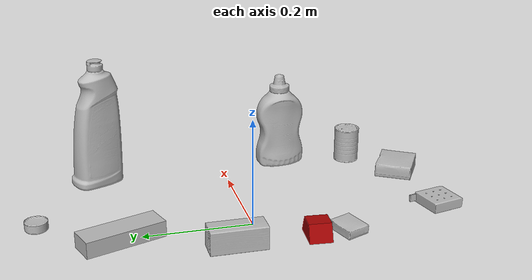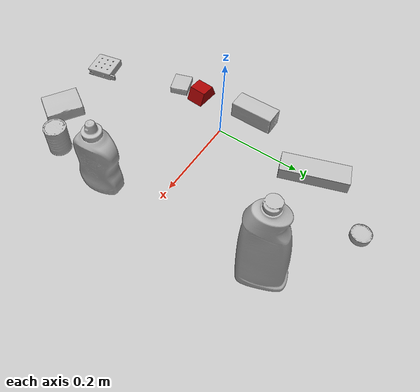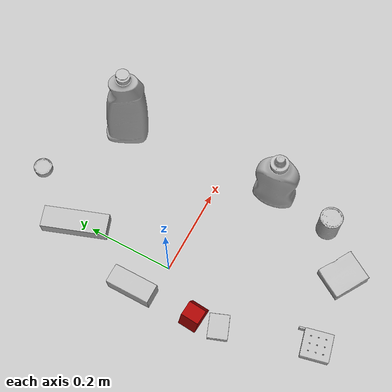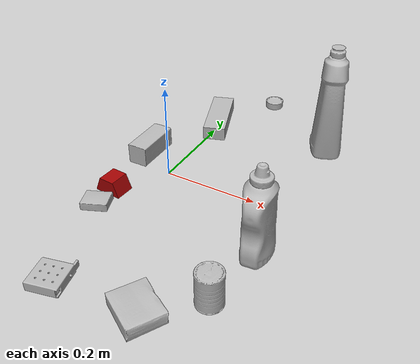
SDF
<sdf version="1.4">
  <world name="default">
    <light name="light1" type="point">
      <pose>0 0 1 0 0 0</pose>
      <diffuse>3 3 3 1</diffuse>
      <specular>3 3 3 1</specular>
    </light>
    <light name="light2" type="point">
      <pose>0 0.5 2 0 0 0</pose>
      <diffuse>1 1 1 1</diffuse>
      <specular>1 1 1 1</specular>
    </light>
    <light name="light3" type="point">
      <pose>0 0.5 2 0 0 0</pose>
      <diffuse>3 3 3 1</diffuse>
      <specular>3 3 3 1</specular>
    </light>
    <scene>
      <ambient>0.7 0.7 0.7</ambient>
    </scene>
    <model name="bottle1">
      <link name="link_bottle1">
        <collision name="default">
          <geometry>
            <mesh>
              <uri>model://mustard_bottle/collision_meshes/collision.obj</uri>
              <scale>1.0 1.0 1.0</scale>
            </mesh>
          </geometry>
          <surface>
            <friction>
              <ode>
                <mu>0.5</mu>
                <mu2>0.5</mu2>
              </ode>
            </friction>
          <contact>
        <ode>
            <max_vel>0</max_vel>
            <min_depth>0.0001</min_depth>
            <kp>1e8</kp>
        </ode>
    </contact></surface>
        </collision>
        <visual name="default">
          <geometry>
            <mesh>
              <uri>model://mustard_bottle/visual_meshes/visual.dae</uri>
              <scale>1.0 1.0 1.0</scale>
            </mesh>
          </geometry>
        </visual>
        <inertial>
          <mass>0.6762011647224426</mass>
          <pose>0.0005032454500906169 -0.00015647402324248105 -0.0174757931381464 0.0004182330054410876 0.0009465793907204819 0.02485376893997312</pose>
          <inertia>
            <ixx>0.001877718</ixx>
            <iyy>0.0016475386</iyy>
            <izz>0.0004948735</izz>
            <ixy>0</ixy>
            <ixz>0</ixz>
            <iyz>0</iyz>
          </inertia>
        </inertial>
      </link>
      <pose>0.26876530051231384 -0.12547828257083893 0.09583088755607605 -0.012050419823490581 -0.004889890423328554 0.07020480972367052</pose>
    </model>
    <model name="bottle2">
      <link name="link_bottle2">
        <collision name="default">
          <geometry>
            <mesh>
              <uri>model://bleach_cleanser/collision_meshes/collision.obj</uri>
              <scale>1.0 1.0 1.0</scale>
            </mesh>
          </geometry>
          <surface>
            <friction>
              <ode>
                <mu>0.5</mu>
                <mu2>0.5</mu2>
              </ode>
            </friction>
          <contact>
        <ode>
            <max_vel>0</max_vel>
            <min_depth>0.0001</min_depth>
            <kp>1e8</kp>
        </ode>
    </contact></surface>
        </collision>
        <visual name="default">
          <geometry>
            <mesh>
              <uri>model://bleach_cleanser/visual_meshes/visual.dae</uri>
              <scale>1.0 1.0 1.0</scale>
            </mesh>
          </geometry>
        </visual>
        <inertial>
          <mass>1.3947629928588867</mass>
          <pose>0.00012193183647468686 0.0037838828284293413 -0.02442161738872528 -0.07381670616230765 0.000420115363335565 -0.006875068774372656</pose>
          <inertia>
            <ixx>0.0067885136</ixx>
            <iyy>0.006325901</iyy>
            <izz>0.0011606595</izz>
            <ixy>0</ixy>
            <ixz>0</ixz>
            <iyz>0</iyz>
          </inertia>
        </inertial>
      </link>
      <pose>0.255952924489975 0.2542741596698761 0.12578412890434265 -0.00019903811853947746 1.7292002989120216e-05 -2.7332418351081555</pose>
    </model>
    <model name="toy1">
      <link name="link_toy1">
        <collision name="default">
          <geometry>
            <mesh>
              <uri>model://nine_hole_peg_test/collision_meshes/collision.obj</uri>
              <scale>0.5 0.5 0.5</scale>
            </mesh>
          </geometry>
          <surface>
            <friction>
              <ode>
                <mu>0.5</mu>
                <mu2>0.5</mu2>
              </ode>
            </friction>
          <contact>
        <ode>
            <max_vel>0</max_vel>
            <min_depth>0.0001</min_depth>
            <kp>1e8</kp>
        </ode>
    </contact></surface>
        </collision>
        <visual name="default">
          <geometry>
            <mesh>
              <uri>model://nine_hole_peg_test/visual_meshes/visual.dae</uri>
              <scale>0.5 0.5 0.5</scale>
            </mesh>
          </geometry>
        </visual>
        <inertial>
          <mass>0.11556825786828995</mass>
          <pose>-0.0023086932487785816 -0.004823807626962662 1.3230343029135838e-05 -0.0014666797633517714 0.0007194158879745651 -0.6342419016734399</pose>
          <inertia>
            <ixx>4.5177487e-05</ixx>
            <iyy>4.2181746e-05</iyy>
            <izz>7.9164296e-05</izz>
            <ixy>0</ixy>
            <ixz>0</ixz>
            <iyz>0</iyz>
          </inertia>
        </inertial>
      </link>
      <pose>-0.002962038852274418 -0.35564255714416504 0.010385497473180294 -4.010807337397566e-09 -2.4294244238246645e-08 0.22790756746334934</pose>
    </model>
    <model name="toy2">
      <link name="link_toy2">
        <collision name="default">
          <geometry>
            <mesh>
              <uri>model://prism/collision_meshes/collision.obj</uri>
              <scale>0.5 0.5 0.5</scale>
            </mesh>
          </geometry>
          <surface>
            <friction>
              <ode>
                <mu>0.5</mu>
                <mu2>0.5</mu2>
              </ode>
            </friction>
          <contact>
        <ode>
            <max_vel>0</max_vel>
            <min_depth>0.0001</min_depth>
            <kp>1e8</kp>
        </ode>
    </contact></surface>
        </collision>
        <visual name="default">
          <geometry>
            <mesh>
              <uri>model://prism/visual_meshes/visual.dae</uri>
              <scale>0.5 0.5 0.5</scale>
            </mesh>
          </geometry>
        </visual>
        <inertial>
          <mass>0.033433690667152405</mass>
          <pose>-4.9267986469203606e-05 -2.480786349678965e-07 -0.001693455153144896 0.0 0.00655918030046738 0.0</pose>
          <inertia>
            <ixx>7.543374e-06</ixx>
            <iyy>9.116264e-06</iyy>
            <izz>1.1166334e-05</izz>
            <ixy>0</ixy>
            <ixz>0</ixz>
            <iyz>0</iyz>
          </inertia>
        </inertial>
      </link>
      <pose>-0.06917878985404968 -0.100094735622406 0.016084996983408928 1.2218353335553663e-08 -3.7753582026849926e-08 -0.07483323707993324</pose>
    </model>
    <model name="can1">
      <link name="link_can1">
        <collision name="default">
          <geometry>
            <mesh>
              <uri>model://master_chef_can/collision_meshes/collision.obj</uri>
              <scale>0.5 0.5 0.5</scale>
            </mesh>
          </geometry>
          <surface>
            <friction>
              <ode>
                <mu>0.5</mu>
                <mu2>0.5</mu2>
              </ode>
            </friction>
          <contact>
        <ode>
            <max_vel>0</max_vel>
            <min_depth>0.0001</min_depth>
            <kp>1e8</kp>
        </ode>
    </contact></surface>
        </collision>
        <visual name="default">
          <geometry>
            <mesh>
              <uri>model://master_chef_can/visual_meshes/visual.dae</uri>
              <scale>0.5 0.5 0.5</scale>
            </mesh>
          </geometry>
        </visual>
        <inertial>
          <mass>0.10766725987195969</mass>
          <pose>-4.661964703700505e-05 1.3926853625889635e-07 -5.079878610558808e-05 -0.0017995160150511523 0.000647916474058074 -0.6102670332280266</pose>
          <inertia>
            <ixx>6.319339e-05</ixx>
            <iyy>6.2728286e-05</iyy>
            <izz>3.491918e-05</izz>
            <ixy>0</ixy>
            <ixz>0</ixz>
            <iyz>0</iyz>
          </inertia>
        </inertial>
      </link>
      <pose>0.2529718279838562 -0.2698703408241272 0.03530199080705643 -1.2670726536261322e-06 -7.75792079839481e-07 2.1632342863504217</pose>
    </model>
    <model name="can2">
      <link name="link_can2">
        <collision name="default">
          <geometry>
            <mesh>
              <uri>model://tuna_fish_can/collision_meshes/collision.obj</uri>
              <scale>0.5 0.5 0.5</scale>
            </mesh>
          </geometry>
          <surface>
            <friction>
              <ode>
                <mu>0.5</mu>
                <mu2>0.5</mu2>
              </ode>
            </friction>
          <contact>
        <ode>
            <max_vel>0</max_vel>
            <min_depth>0.0001</min_depth>
            <kp>1e8</kp>
        </ode>
    </contact></surface>
        </collision>
        <visual name="default">
          <geometry>
            <mesh>
              <uri>model://tuna_fish_can/visual_meshes/visual.dae</uri>
              <scale>0.5 0.5 0.5</scale>
            </mesh>
          </geometry>
        </visual>
        <inertial>
          <mass>0.02740846574306488</mass>
          <pose>-2.0361561837489717e-05 -7.256384378706571e-06 -0.0005269024986773729 -0.0017944791545750336 0.000171617609773777 0.24054039995463303</pose>
          <inertia>
            <ixx>3.7056664e-06</ixx>
            <iyy>3.6902204e-06</iyy>
            <izz>6.3409243e-06</izz>
            <ixy>0</ixy>
            <ixz>0</ixz>
            <iyz>0</iyz>
          </inertia>
        </inertial>
      </link>
      <pose>0.07490111142396927 0.3783920407295227 0.008520002476871014 2.3958061120925304e-08 -1.3827230472682196e-08 -1.5054433877787674</pose>
    </model>
    <model name="box1">
      <link name="link_box1">
        <collision name="default">
          <geometry>
            <mesh>
              <uri>model://gelatin_box/collision_meshes/collision.obj</uri>
              <scale>1.0 1.0 1.0</scale>
            </mesh>
          </geometry>
          <surface>
            <friction>
              <ode>
                <mu>0.5</mu>
                <mu2>0.5</mu2>
              </ode>
            </friction>
          <contact>
        <ode>
            <max_vel>0</max_vel>
            <min_depth>0.0001</min_depth>
            <kp>1e8</kp>
        </ode>
    </contact></surface>
        </collision>
        <visual name="default">
          <geometry>
            <mesh>
              <uri>model://gelatin_box/visual_meshes/visual.dae</uri>
              <scale>1.0 1.0 1.0</scale>
            </mesh>
          </geometry>
        </visual>
        <inertial>
          <mass>0.1693437397480011</mass>
          <pose>0.0004319618456065655 0.00011156872642459348 -0.00036403213744051754 -0.0010503721973280913 -0.004755817758053359 0.01644055760876268</pose>
          <inertia>
            <ixx>0.00011954286</ixx>
            <iyy>8.538885e-05</iyy>
            <izz>0.0001819709</izz>
            <ixy>0</ixy>
            <ixz>0</ixz>
            <iyz>0</iyz>
          </inertia>
        </inertial>
      </link>
      <pose>0.16426809132099152 -0.34707188606262207 0.015168312937021255 0.005597474210085778 -0.007304565397492332 1.0150900176386402</pose>
    </model>
    <model name="box2">
      <link name="link_box2">
        <collision name="default">
          <geometry>
            <mesh>
              <uri>model://pudding_box/collision_meshes/collision.obj</uri>
              <scale>0.5 0.5 0.5</scale>
            </mesh>
          </geometry>
          <surface>
            <friction>
              <ode>
                <mu>0.5</mu>
                <mu2>0.5</mu2>
              </ode>
            </friction>
          <contact>
        <ode>
            <max_vel>0</max_vel>
            <min_depth>0.0001</min_depth>
            <kp>1e8</kp>
        </ode>
    </contact></surface>
        </collision>
        <visual name="default">
          <geometry>
            <mesh>
              <uri>model://pudding_box/visual_meshes/visual.dae</uri>
              <scale>0.5 0.5 0.5</scale>
            </mesh>
          </geometry>
        </visual>
        <inertial>
          <mass>0.04695427790284157</mass>
          <pose>0.00024474109522998333 0.00040339428232982755 -0.0002594413817860186 0.005213102262859105 -0.0066037982576109796 0.020079825159299278</pose>
          <inertia>
            <ixx>1.3269848e-05</ixx>
            <iyy>8.9280475e-06</iyy>
            <izz>1.95964e-05</izz>
            <ixy>0</ixy>
            <ixz>0</ixz>
            <iyz>0</iyz>
          </inertia>
        </inertial>
      </link>
      <pose>-0.06677418202161789 -0.15922610461711884 0.009862900711596012 0.02234962716853767 -0.011390960530337457 -1.216617788876542</pose>
    </model>
    <model name="box3">
      <link name="link_box3">
        <collision name="default">
          <geometry>
            <mesh>
              <uri>model://wood_block/collision_meshes/collision.obj</uri>
              <scale>0.5 0.5 0.5</scale>
            </mesh>
          </geometry>
          <surface>
            <friction>
              <ode>
                <mu>0.5</mu>
                <mu2>0.5</mu2>
              </ode>
            </friction>
          <contact>
        <ode>
            <max_vel>0</max_vel>
            <min_depth>0.0001</min_depth>
            <kp>1e8</kp>
        </ode>
    </contact></surface>
        </collision>
        <visual name="default">
          <geometry>
            <mesh>
              <uri>model://wood_block/visual_meshes/visual.dae</uri>
              <scale>0.5 0.5 0.5</scale>
            </mesh>
          </geometry>
        </visual>
        <inertial>
          <mass>0.2591375410556793</mass>
          <pose>-2.9066577553749084e-06 -0.00028540476341731846 0.00013204291462898254 -0.05221026556657302 -0.005192695801982805 -0.006861378038707315</pose>
          <inertia>
            <ixx>8.669131e-05</ixx>
            <iyy>0.00027385785</iyy>
            <izz>0.00027283354</izz>
            <ixy>0</ixy>
            <ixz>0</ixz>
            <iyz>0</iyz>
          </inertia>
        </inertial>
      </link>
      <pose>-0.07789512723684311 0.047006119042634964 0.022629253566265106 -0.005208492792732955 0.005718778467034415 1.5738570904999556</pose>
    </model>
    <model name="box4">
      <link name="link_box4">
        <collision name="default">
          <geometry>
            <mesh>
              <uri>model://jenga/collision_meshes/collision.obj</uri>
              <scale>1.0 1.0 1.0</scale>
            </mesh>
          </geometry>
          <surface>
            <friction>
              <ode>
                <mu>0.5</mu>
                <mu2>0.5</mu2>
              </ode>
            </friction>
          <contact>
        <ode>
            <max_vel>0</max_vel>
            <min_depth>0.0001</min_depth>
            <kp>1e8</kp>
        </ode>
    </contact></surface>
        </collision>
        <visual name="default">
          <geometry>
            <mesh>
              <uri>model://jenga/visual_meshes/visual.dae</uri>
              <scale>1.0 1.0 1.0</scale>
            </mesh>
          </geometry>
        </visual>
        <inertial>
          <mass>0.14610815048217773</mass>
          <pose>-2.502855807051674e-07 -0.00010250010382151231 -4.092339804628864e-05 0.0 -7.342155186052628e-07 0.0</pose>
          <inertia>
            <ixx>4.043167e-05</ixx>
            <iyy>0.0002739639</iyy>
            <izz>0.00029247976</izz>
            <ixy>0</ixy>
            <ixz>0</ixz>
            <iyz>0</iyz>
          </inertia>
        </inertial>
      </link>
      <pose>-0.007957125082612038 0.2362871766090393 0.014999997802078724 3.946290612498915e-09 -1.998158080547062e-10 1.912573463330261</pose>
    </model>
  <physics type="ode">
      <max_contacts>50</max_contacts>
      <ode>
        <solver>
          <type>quick</type>
          <iters>75</iters>
        </solver>
        <constraints>
          <contact_max_correcting_vel>0</contact_max_correcting_vel>
          <contact_surface_layer>0</contact_surface_layer>
        </constraints>
      </ode>
    </physics></world>
</sdf>
